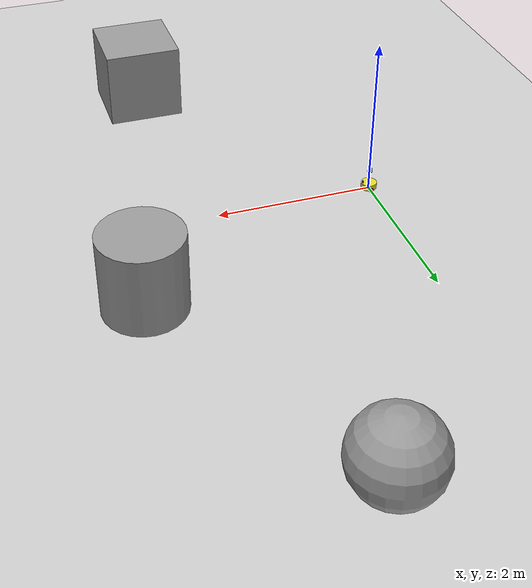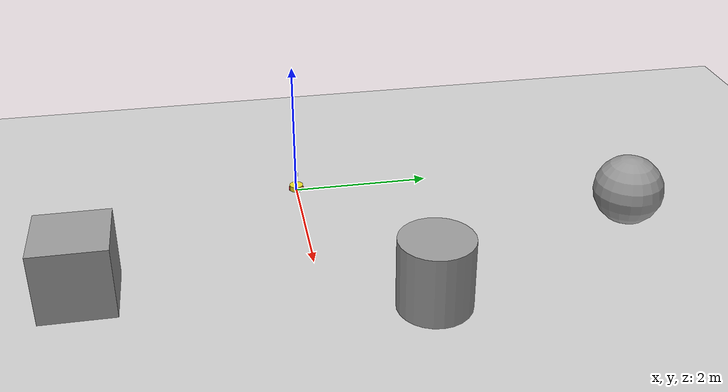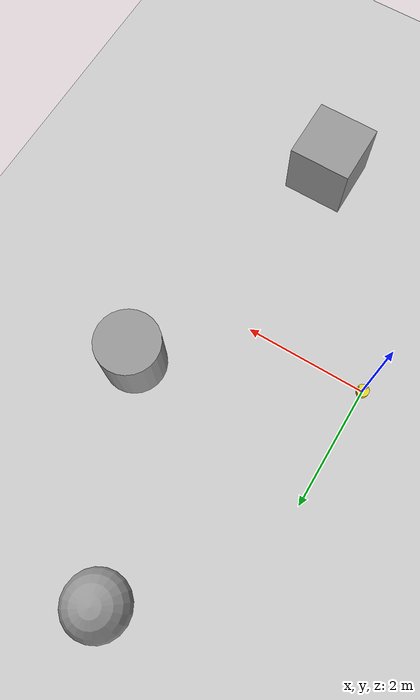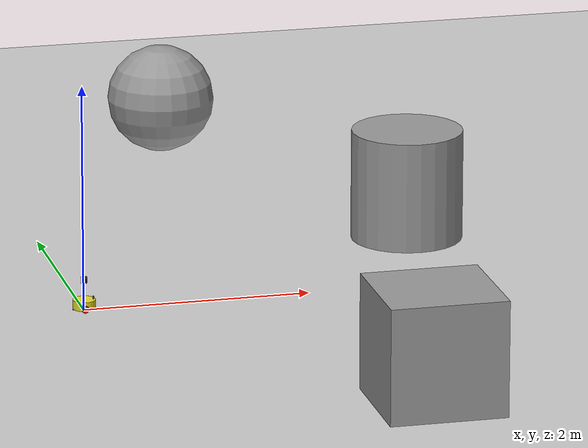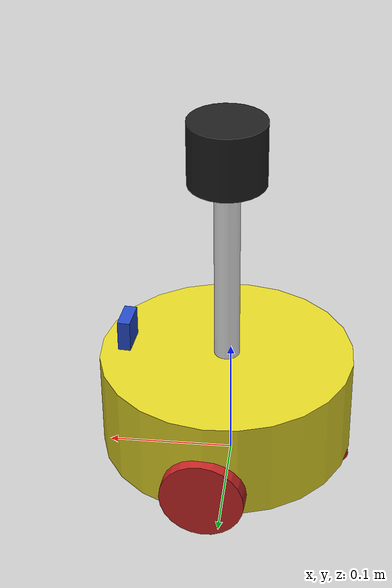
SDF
<sdf version="1.7">
 <world name="default">
  <light name="sun" type="directional">
   <pose>0 0 10 0 -0 0</pose>
   <diffuse>0.8 0.8 0.8 1</diffuse>
   <specular>0.2 0.2 0.2 1</specular>
   <attenuation>
    <range>1000</range>
    <constant>0.9</constant>
    <linear>0.01</linear>
    <quadratic>0.001</quadratic>
   </attenuation>
   <direction>-0.5 0.1 -0.9</direction>
   <spot><inner_angle>0</inner_angle><outer_angle>0</outer_angle><falloff>0</falloff></spot>
  </light>
  <model name="ground_plane">
   <static>1</static>
   <link name="link">
    <collision name="collision">
     <geometry><plane><normal>0 0 1</normal><size>100 100</size></plane></geometry>
     <surface>
      <contact><collide_bitmask>65535</collide_bitmask></contact>
      <friction><ode><mu>100</mu><mu2>50</mu2></ode></friction>
     </surface>
    </collision>
    <visual name="visual">
     <cast_shadows>0</cast_shadows>
     <geometry><plane><normal>0 0 1</normal><size>100 100</size></plane></geometry>
     <material>
      <script><uri>file://media/materials/scripts/gazebo.material</uri><name>Gazebo/Grey</name></script>
     </material>
    </visual>
   </link>
  </model>
  <gravity>0 0 -9.8</gravity>
  <magnetic_field>6e-06 2.3e-05 -4.2e-05</magnetic_field>
  <atmosphere type="adiabatic"/>
  <physics type="ode">
   <max_step_size>0.001</max_step_size>
   <real_time_factor>1</real_time_factor>
   <real_time_update_rate>1000</real_time_update_rate>
  </physics>
  <scene><ambient>0.4 0.4 0.4 1</ambient><background>0.7 0.7 0.7 1</background><shadows>1</shadows></scene>
  <spherical_coordinates>
   <surface_model>EARTH_WGS84</surface_model>
   <latitude_deg>0</latitude_deg>
   <longitude_deg>0</longitude_deg>
   <elevation>0</elevation>
   <heading_deg>0</heading_deg>
  </spherical_coordinates>
  <model name="mycar">
   <link name="base_footprint">
    <inertial>
     <pose>0.001509 0 0.06033 0 -0 0</pose>
     <mass>0.53</mass>
     <inertia>
      <ixx>0.00183228</ixx>
      <ixy>0</ixy>
      <ixz>-3.77358e-05</ixz>
      <iyy>0.00189507</iyy>
      <iyz>0</iyz>
      <izz>0.00256483</izz>
     </inertia>
    </inertial>
    <collision name="base_footprint_fixed_joint_lump__base_link_collision">
     <pose>0 0 0.055 0 -0 0</pose>
     <geometry><cylinder><length>0.08</length><radius>0.1</radius></cylinder></geometry>
    </collision>
    <collision name="base_footprint_fixed_joint_lump__camera_collision_1">
     <pose>0.08 0 0.1075 0 -0 0</pose>
     <geometry><box><size>0.01 0.025 0.025</size></box></geometry>
    </collision>
    <collision name="base_footprint_fixed_joint_lump__support_collision_2">
     <pose>0 0 0.17 0 -0 0</pose>
     <geometry><cylinder><length>0.15</length><radius>0.01</radius></cylinder></geometry>
    </collision>
    <visual name="base_footprint_visual"><geometry><sphere><radius>0.001</radius></sphere></geometry></visual>
    <visual name="base_footprint_fixed_joint_lump__base_link_visual_1">
     <pose>0 0 0.055 0 -0 0</pose>
     <geometry><cylinder><length>0.08</length><radius>0.1</radius></cylinder></geometry>
     <material>
      <script><name>Gazebo/Yellow</name><uri>file://media/materials/scripts/gazebo.material</uri></script>
     </material>
    </visual>
    <visual name="base_footprint_fixed_joint_lump__camera_visual_2">
     <pose>0.08 0 0.1075 0 -0 0</pose>
     <geometry><box><size>0.01 0.025 0.025</size></box></geometry>
     <material>
      <script><name>Gazebo/Blue</name><uri>file://media/materials/scripts/gazebo.material</uri></script>
     </material>
    </visual>
    <visual name="base_footprint_fixed_joint_lump__support_visual_3">
     <pose>0 0 0.17 0 -0 0</pose>
     <geometry><cylinder><length>0.15</length><radius>0.01</radius></cylinder></geometry>
     <material>
      <script><name>Gazebo/White</name><uri>file://media/materials/scripts/gazebo.material</uri></script>
     </material>
    </visual>
    <visual name="base_footprint_fixed_joint_lump__laser_visual_4">
     <pose>0 0 0.27 0 -0 0</pose>
     <geometry><cylinder><length>0.05</length><radius>0.03</radius></cylinder></geometry>
     <material>
      <script><name>Gazebo/Black</name><uri>file://media/materials/scripts/gazebo.material</uri></script>
     </material>
    </visual>
   </link>
   <joint name="back_wheel2base_link" type="revolute">
    <pose relative_to="base_footprint">-0.0925 0 0.0075 0 -0 0</pose>
    <parent>base_footprint</parent>
    <child>back_wheel</child>
    <axis>
     <xyz>1 1 1</xyz>
     <limit><lower>-1e+16</lower><upper>1e+16</upper></limit>
     <dynamics><spring_reference>0</spring_reference><spring_stiffness>0</spring_stiffness></dynamics>
    </axis>
   </joint>
   <link name="back_wheel">
    <pose relative_to="back_wheel2base_link">0 0 0 0 -0 0</pose>
    <inertial>
     <mass>0.03</mass>
     <inertia>
      <ixx>6.75e-07</ixx>
      <ixy>0</ixy>
      <ixz>0</ixz>
      <iyy>6.75e-07</iyy>
      <iyz>0</iyz>
      <izz>6.75e-07</izz>
     </inertia>
    </inertial>
    <collision name="back_wheel_collision">
     <geometry><sphere><radius>0.0075</radius></sphere></geometry>
    </collision>
    <visual name="back_wheel_visual">
     <geometry><sphere><radius>0.0075</radius></sphere></geometry>
     <material>
      <script><name>Gazebo/Red</name><uri>file://media/materials/scripts/gazebo.material</uri></script>
     </material>
    </visual>
   </link>
   <joint name="front_wheel2base_link" type="revolute">
    <pose relative_to="base_footprint">0.0925 0 0.0075 0 -0 0</pose>
    <parent>base_footprint</parent>
    <child>front_wheel</child>
    <axis>
     <xyz>1 1 1</xyz>
     <limit><lower>-1e+16</lower><upper>1e+16</upper></limit>
     <dynamics><spring_reference>0</spring_reference><spring_stiffness>0</spring_stiffness></dynamics>
    </axis>
   </joint>
   <link name="front_wheel">
    <pose relative_to="front_wheel2base_link">0 0 0 0 -0 0</pose>
    <inertial>
     <mass>0.03</mass>
     <inertia>
      <ixx>6.75e-07</ixx>
      <ixy>0</ixy>
      <ixz>0</ixz>
      <iyy>6.75e-07</iyy>
      <iyz>0</iyz>
      <izz>6.75e-07</izz>
     </inertia>
    </inertial>
    <collision name="front_wheel_collision">
     <geometry><sphere><radius>0.0075</radius></sphere></geometry>
    </collision>
    <visual name="front_wheel_visual">
     <geometry><sphere><radius>0.0075</radius></sphere></geometry>
     <material>
      <script><name>Gazebo/Red</name><uri>file://media/materials/scripts/gazebo.material</uri></script>
     </material>
    </visual>
   </link>
   <joint name="left_wheel2base_link" type="revolute">
    <pose relative_to="base_footprint">0 0.1 0.0325 0 -0 0</pose>
    <parent>base_footprint</parent>
    <child>left_wheel</child>
    <axis>
     <xyz>0 1 0</xyz>
     <limit><lower>-1e+16</lower><upper>1e+16</upper></limit>
     <dynamics><spring_reference>0</spring_reference><spring_stiffness>0</spring_stiffness></dynamics>
    </axis>
   </joint>
   <link name="left_wheel">
    <pose relative_to="left_wheel2base_link">0 0 0 0 -0 0</pose>
    <inertial>
     <mass>0.05</mass>
     <inertia>
      <ixx>1.41406e-05</ixx>
      <ixy>0</ixy>
      <ixz>0</ixz>
      <iyy>1.41406e-05</iyy>
      <iyz>0</iyz>
      <izz>2.64063e-05</izz>
     </inertia>
    </inertial>
    <collision name="left_wheel_collision">
     <pose>0 0 0 1.5708 -0 0</pose>
     <geometry><cylinder><length>0.015</length><radius>0.0325</radius></cylinder></geometry>
    </collision>
    <visual name="left_wheel_visual">
     <pose>0 0 0 1.5708 -0 0</pose>
     <geometry><cylinder><length>0.015</length><radius>0.0325</radius></cylinder></geometry>
     <material>
      <script><name>Gazebo/Red</name><uri>file://media/materials/scripts/gazebo.material</uri></script>
     </material>
    </visual>
   </link>
   <joint name="right_wheel2base_link" type="revolute">
    <pose relative_to="base_footprint">0 -0.1 0.0325 0 -0 0</pose>
    <parent>base_footprint</parent>
    <child>right_wheel</child>
    <axis>
     <xyz>0 1 0</xyz>
     <limit><lower>-1e+16</lower><upper>1e+16</upper></limit>
     <dynamics><spring_reference>0</spring_reference><spring_stiffness>0</spring_stiffness></dynamics>
    </axis>
   </joint>
   <link name="right_wheel">
    <pose relative_to="right_wheel2base_link">0 0 0 0 -0 0</pose>
    <inertial>
     <mass>0.05</mass>
     <inertia>
      <ixx>1.41406e-05</ixx>
      <ixy>0</ixy>
      <ixz>0</ixz>
      <iyy>1.41406e-05</iyy>
      <iyz>0</iyz>
      <izz>2.64063e-05</izz>
     </inertia>
    </inertial>
    <collision name="right_wheel_collision">
     <pose>0 0 0 1.5708 -0 0</pose>
     <geometry><cylinder><length>0.015</length><radius>0.0325</radius></cylinder></geometry>
    </collision>
    <visual name="right_wheel_visual">
     <pose>0 0 0 1.5708 -0 0</pose>
     <geometry><cylinder><length>0.015</length><radius>0.0325</radius></cylinder></geometry>
     <material>
      <script><name>Gazebo/Red</name><uri>file://media/materials/scripts/gazebo.material</uri></script>
     </material>
    </visual>
   </link>
   <frame name="camera2base_link" attached_to="base_link"><pose>0.08 0 0.0525 0 -0 0</pose></frame>
   <frame name="camera" attached_to="camera2base_link"/>
   <frame name="laser2support" attached_to="support"><pose>0 0 0.1 0 -0 0</pose></frame>
   <frame name="laser" attached_to="laser2support"/>
   <frame name="support2base_link" attached_to="base_link"><pose>0 0 0.115 0 -0 0</pose></frame>
   <frame name="support" attached_to="support2base_link"/>
   <frame name="base_link2base_footprint" attached_to="base_footprint"><pose>0 0 0.055 0 -0 0</pose></frame>
   <frame name="base_link" attached_to="base_link2base_footprint"/>
   <pose>0.003317 -0.00015 0 -0 -0 -0.082311</pose>
  </model>
  <model name="unit_box">
   <pose>2.29027 -3.06431 0.499995 1e-05 -0 0</pose>
   <link name="link">
    <inertial>
     <mass>1</mass>
     <inertia>
      <ixx>0.166667</ixx>
      <ixy>0</ixy>
      <ixz>0</ixz>
      <iyy>0.166667</iyy>
      <iyz>0</iyz>
      <izz>0.166667</izz>
     </inertia>
    </inertial>
    <collision name="collision"><geometry><box><size>1 1 1</size></box></geometry></collision>
    <visual name="visual">
     <geometry><box><size>1 1 1</size></box></geometry>
     <material>
      <script><name>Gazebo/Grey</name><uri>file://media/materials/scripts/gazebo.material</uri></script>
     </material>
    </visual>
   </link>
  </model>
  <model name="unit_cylinder">
   <pose>3.25055 1.38387 0.499993 -3e-06 -4e-06 -0</pose>
   <link name="link">
    <inertial>
     <mass>1</mass>
     <inertia><ixx>0.145833</ixx><ixy>0</ixy><ixz>0</ixz><iyy>0.145833</iyy><iyz>0</iyz><izz>0.125</izz></inertia>
    </inertial>
    <collision name="collision">
     <geometry><cylinder><radius>0.5</radius><length>1</length></cylinder></geometry>
    </collision>
    <visual name="visual">
     <geometry><cylinder><radius>0.5</radius><length>1</length></cylinder></geometry>
     <material>
      <script><name>Gazebo/Grey</name><uri>file://media/materials/scripts/gazebo.material</uri></script>
     </material>
    </visual>
   </link>
  </model>
  <light name="user_spot_light_0" type="spot">
   <pose>4.59568 0.647933 1 0 -0 0</pose>
   <diffuse>0.5 0.5 0.5 1</diffuse>
   <specular>0.1 0.1 0.1 1</specular>
   <direction>0 0 -1</direction>
   <attenuation>
    <range>20</range>
    <constant>0.5</constant>
    <linear>0.01</linear>
    <quadratic>0.001</quadratic>
   </attenuation>
   <cast_shadows>0</cast_shadows>
   <spot><inner_angle>0.6</inner_angle><outer_angle>1</outer_angle><falloff>1</falloff></spot>
  </light>
  <model name="unit_sphere">
   <pose>1.70995 4.58672 0.5 0 -0 0</pose>
   <link name="link">
    <inertial>
     <mass>1</mass>
     <inertia><ixx>0.1</ixx><ixy>0</ixy><ixz>0</ixz><iyy>0.1</iyy><iyz>0</iyz><izz>0.1</izz></inertia>
    </inertial>
    <collision name="collision"><geometry><sphere><radius>0.5</radius></sphere></geometry></collision>
    <visual name="visual">
     <geometry><sphere><radius>0.5</radius></sphere></geometry>
     <material>
      <script><name>Gazebo/Grey</name><uri>file://media/materials/scripts/gazebo.material</uri></script>
     </material>
    </visual>
   </link>
  </model>
  <light name="user_spot_light_1" type="spot">
   <pose>0.013914 0.007709 1 0 -0 0</pose>
   <diffuse>0.5 0.5 0.5 1</diffuse>
   <specular>0.1 0.1 0.1 1</specular>
   <direction>0 0 -1</direction>
   <attenuation>
    <range>20</range>
    <constant>0.5</constant>
    <linear>0.01</linear>
    <quadratic>0.001</quadratic>
   </attenuation>
   <cast_shadows>0</cast_shadows>
   <spot><inner_angle>0.6</inner_angle><outer_angle>1</outer_angle><falloff>1</falloff></spot>
  </light>
  <light name="sun" type="directional">
   <pose>2.42252 -0.950544 10 0 -0 0</pose>
   <diffuse>0.8 0.8 0.8 1</diffuse>
   <specular>0.2 0.2 0.2 1</specular>
   <attenuation>
    <range>1000</range>
    <constant>0.9</constant>
    <linear>0.01</linear>
    <quadratic>0.001</quadratic>
   </attenuation>
   <direction>-0.5 0.1 -0.9</direction>
  </light>
 </world>
</sdf>
